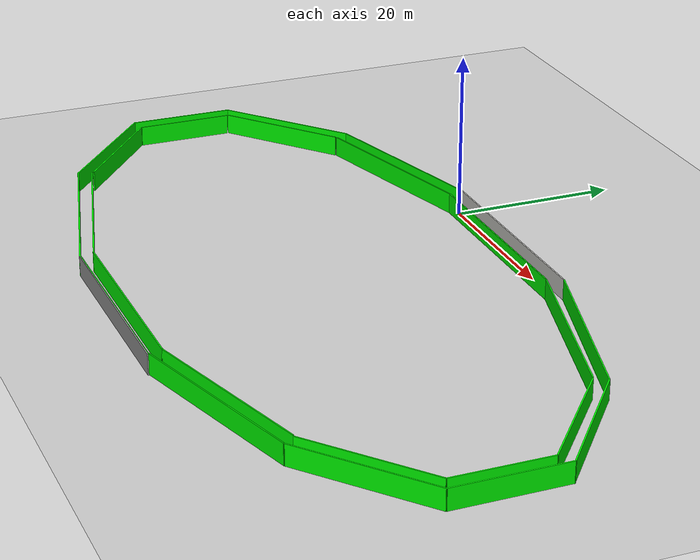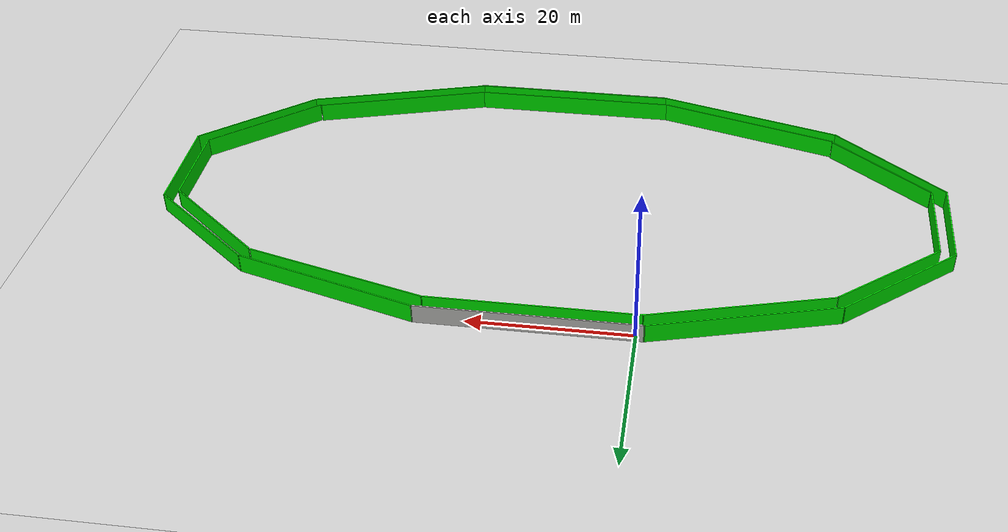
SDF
<sdf version="1.6">
 <world name="default">
  <model name="ground_plane">
   <static>1</static>
   <link name="link">
    <collision name="collision">
     <geometry><plane><normal>0 0 1</normal><size>100 100</size></plane></geometry>
     <surface><friction><ode><mu>100</mu><mu2>50</mu2></ode></friction></surface>
    </collision>
    <visual name="visual">
     <cast_shadows>0</cast_shadows>
     <geometry><plane><normal>0 0 1</normal><size>100 100</size></plane></geometry>
     <material>
      <script><uri>file://media/materials/scripts/gazebo.material</uri><name>Gazebo/Grey</name></script>
     </material>
    </visual>
   </link>
  </model>
  <light name="sun" type="directional">
   <pose>0 0 10 0 -0 0</pose>
   <diffuse>0.8 0.8 0.8 1</diffuse>
   <specular>0.2 0.2 0.2 1</specular>
   <attenuation>
    <range>1000</range>
    <constant>0.9</constant>
    <linear>0.01</linear>
    <quadratic>0.001</quadratic>
   </attenuation>
   <direction>-0.5 0.1 -0.9</direction>
  </light>
  <gravity>0 0 -9.8</gravity>
  <magnetic_field>6e-06 2.3e-05 -4.2e-05</magnetic_field>
  <atmosphere type="adiabatic"/>
  <physics name="default_physics" default="0" type="ode">
   <max_step_size>0.001</max_step_size>
   <real_time_factor>1</real_time_factor>
   <real_time_update_rate>1000</real_time_update_rate>
  </physics>
  <scene><ambient>0.4 0.4 0.4 1</ambient><background>0.7 0.7 0.7 1</background><shadows>1</shadows></scene>
  <spherical_coordinates>
   <surface_model>EARTH_WGS84</surface_model>
   <latitude_deg>0</latitude_deg>
   <longitude_deg>0</longitude_deg>
   <elevation>0</elevation>
   <heading_deg>0</heading_deg>
  </spherical_coordinates>
  <model name="racetrack">
   <pose>12.2159 -23.3351 0 0 -0 0</pose>
   <link name="Wall_26">
    <collision name="Wall_26_Collision">
     <geometry><box><size>11.75 0.15 2.5</size></box></geometry>
     <pose>0 0 1.25 0 -0 0</pose>
    </collision>
    <visual name="Wall_26_Visual">
     <pose>0 0 1.25 0 -0 0</pose>
     <geometry><box><size>11.75 0.15 2.5</size></box></geometry>
     <material>
      <script><uri>file://media/materials/scripts/gazebo.material</uri><name>Gazebo/Grey</name></script>
      <ambient>0 1 0 1</ambient>
     </material>
     <meta><layer>0</layer></meta>
    </visual>
    <pose>-47.7114 -0.020894 0 0 -0 1.5708</pose>
   </link>
   <link name="Wall_29">
    <collision name="Wall_29_Collision">
     <geometry><box><size>16.2369 0.15 2.5</size></box></geometry>
     <pose>0 0 1.25 0 -0 0</pose>
    </collision>
    <visual name="Wall_29_Visual">
     <pose>0 0 1.25 0 -0 0</pose>
     <geometry><box><size>16.2369 0.15 2.5</size></box></geometry>
     <material>
      <script><uri>file://media/materials/scripts/gazebo.material</uri><name>Gazebo/Grey</name></script>
      <ambient>0 1 0 1</ambient>
     </material>
     <meta><layer>0</layer></meta>
    </visual>
    <pose>-41.4913 11.1793 0 0 -0 0.687882</pose>
   </link>
   <link name="Wall_31">
    <collision name="Wall_31_Collision">
     <geometry><box><size>23 0.15 2.5</size></box></geometry>
     <pose>0 0 1.25 0 -0 0</pose>
    </collision>
    <visual name="Wall_31_Visual">
     <pose>0 0 1.25 0 -0 0</pose>
     <geometry><box><size>23 0.15 2.5</size></box></geometry>
     <material>
      <script><uri>file://media/materials/scripts/gazebo.material</uri><name>Gazebo/Grey</name></script>
      <ambient>0 1 0 1</ambient>
     </material>
     <meta><layer>0</layer></meta>
    </visual>
    <pose>-23.9952 19.4277 0 0 -0 0.261799</pose>
   </link>
   <link name="Wall_32">
    <collision name="Wall_32_Collision">
     <geometry><box><size>26 0.15 2.5</size></box></geometry>
     <pose>0 0 1.25 0 -0 0</pose>
    </collision>
    <visual name="Wall_32_Visual">
     <pose>0 0 1.25 0 -0 0</pose>
     <geometry><box><size>26 0.15 2.5</size></box></geometry>
     <material>
      <script><uri>file://media/materials/scripts/gazebo.material</uri><name>Gazebo/Grey</name></script>
      <ambient>0 1 0 1</ambient>
     </material>
     <meta><layer>0</layer></meta>
    </visual>
    <pose>-0.0345 22.3847 0 0 -0 0</pose>
   </link>
   <link name="Wall_33">
    <collision name="Wall_33_Collision">
     <geometry><box><size>23.25 0.15 2.5</size></box></geometry>
     <pose>0 0 1.25 0 -0 0</pose>
    </collision>
    <visual name="Wall_33_Visual">
     <pose>0 0 1.25 0 -0 0</pose>
     <geometry><box><size>23.25 0.15 2.5</size></box></geometry>
     <material>
      <script><uri>file://media/materials/scripts/gazebo.material</uri><name>Gazebo/Grey</name></script>
      <ambient>0 1 0 1</ambient>
     </material>
     <meta><layer>0</layer></meta>
    </visual>
    <pose>24.0469 19.3953 0 0 0 -0.261799</pose>
   </link>
   <link name="Wall_35">
    <collision name="Wall_35_Collision">
     <geometry><box><size>16.3153 0.15 2.5</size></box></geometry>
     <pose>0 0 1.25 0 -0 0</pose>
    </collision>
    <visual name="Wall_35_Visual">
     <pose>0 0 1.25 0 -0 0</pose>
     <geometry><box><size>16.3153 0.15 2.5</size></box></geometry>
     <material>
      <script><uri>file://media/materials/scripts/gazebo.material</uri><name>Gazebo/Grey</name></script>
      <ambient>0 1 0 1</ambient>
     </material>
     <meta><layer>0</layer></meta>
    </visual>
    <pose>41.7559 11.0562 0 0 0 -0.693764</pose>
   </link>
   <link name="Wall_36">
    <collision name="Wall_36_Collision">
     <geometry><box><size>11.75 0.15 2.5</size></box></geometry>
     <pose>0 0 1.25 0 -0 0</pose>
    </collision>
    <visual name="Wall_36_Visual">
     <pose>0 0 1.25 0 -0 0</pose>
     <geometry><box><size>11.75 0.15 2.5</size></box></geometry>
     <material>
      <script><uri>file://media/materials/scripts/gazebo.material</uri><name>Gazebo/Grey</name></script>
      <ambient>0 1 0 1</ambient>
     </material>
     <meta><layer>0</layer></meta>
    </visual>
    <pose>47.9702 0.087869 0 0 0 -1.5708</pose>
   </link>
   <link name="Wall_37">
    <collision name="Wall_37_Collision">
     <geometry><box><size>16.5151 0.15 2.5</size></box></geometry>
     <pose>0 0 1.25 0 -0 0</pose>
    </collision>
    <visual name="Wall_37_Visual">
     <pose>0 0 1.25 0 -0 0</pose>
     <geometry><box><size>16.5151 0.15 2.5</size></box></geometry>
     <material>
      <script><uri>file://media/materials/scripts/gazebo.material</uri><name>Gazebo/Grey</name></script>
      <ambient>0 1 0 1</ambient>
     </material>
     <meta><layer>0</layer></meta>
    </visual>
    <pose>41.6636 -10.9256 0 0 0 -2.4508</pose>
   </link>
   <link name="Wall_39">
    <collision name="Wall_39_Collision">
     <geometry><box><size>22.9353 0.15 2.5</size></box></geometry>
     <pose>0 0 1.25 0 -0 0</pose>
    </collision>
    <visual name="Wall_39_Visual">
     <pose>0 0 1.25 0 -0 0</pose>
     <geometry><box><size>22.9353 0.15 2.5</size></box></geometry>
     <material>
      <script><uri>file://media/materials/scripts/gazebo.material</uri><name>Gazebo/Grey</name></script>
      <ambient>0 1 0 1</ambient>
     </material>
     <meta><layer>0</layer></meta>
    </visual>
    <pose>24.0974 -19.277 0 0 0 -2.86255</pose>
   </link>
   <link name="Wall_40">
    <collision name="Wall_40_Collision">
     <geometry><box><size>26 0.15 2.5</size></box></geometry>
     <pose>0 0 1.25 0 -0 0</pose>
    </collision>
    <visual name="Wall_40_Visual">
     <pose>0 0 1.25 0 -0 0</pose>
     <geometry><box><size>26 0.15 2.5</size></box></geometry>
     <material>
      <script><uri>file://media/materials/scripts/gazebo.material</uri><name>Gazebo/Grey</name></script>
      <ambient>0 1 0 1</ambient>
     </material>
     <meta><layer>0</layer></meta>
    </visual>
    <pose>0.220422 -22.415 0 0 -0 3.14159</pose>
   </link>
   <link name="Wall_41">
    <collision name="Wall_41_Collision">
     <geometry><box><size>23.6379 0.15 2.5</size></box></geometry>
     <pose>0 0 1.25 0 -0 0</pose>
    </collision>
    <visual name="Wall_41_Visual">
     <pose>0 0 1.25 0 -0 0</pose>
     <geometry><box><size>23.6379 0.15 2.5</size></box></geometry>
     <material>
      <script><uri>file://media/materials/scripts/gazebo.material</uri><name>Gazebo/Grey</name></script>
      <ambient>0 1 0 1</ambient>
     </material>
     <meta><layer>0</layer></meta>
    </visual>
    <pose>-24.0216 -19.277 0 0 -0 2.87111</pose>
   </link>
   <link name="Wall_44">
    <collision name="Wall_44_Collision">
     <geometry><box><size>15.6786 0.15 2.5</size></box></geometry>
     <pose>0 0 1.25 0 -0 0</pose>
    </collision>
    <visual name="Wall_44_Visual">
     <pose>0 0 1.25 0 -0 0</pose>
     <geometry><box><size>15.6786 0.15 2.5</size></box></geometry>
     <material>
      <script><uri>file://media/materials/scripts/gazebo.material</uri><name>Gazebo/Grey</name></script>
      <ambient>0 1 0 1</ambient>
     </material>
     <meta><layer>0</layer></meta>
    </visual>
    <pose>-41.5529 -10.94 0 0 -0 2.46005</pose>
   </link>
   <link name="Wall_46">
    <collision name="Wall_46_Collision">
     <geometry><box><size>26 0.15 2.5</size></box></geometry>
     <pose>0 0 1.25 0 -0 0</pose>
    </collision>
    <visual name="Wall_46_Visual">
     <pose>0 0 1.25 0 -0 0</pose>
     <geometry><box><size>26 0.15 2.5</size></box></geometry>
     <material>
      <script><uri>file://media/materials/scripts/gazebo.material</uri><name>Gazebo/Grey</name></script>
      <ambient>0 1 0 1</ambient>
     </material>
     <meta><layer>0</layer></meta>
    </visual>
    <pose>0.393939 -24.086 0 0 -0 0</pose>
   </link>
   <link name="Wall_47">
    <collision name="Wall_47_Collision">
     <geometry><box><size>24.0492 0.15 2.5</size></box></geometry>
     <pose>0 0 1.25 0 -0 0</pose>
    </collision>
    <visual name="Wall_47_Visual">
     <pose>0 0 1.25 0 -0 0</pose>
     <geometry><box><size>24.0492 0.15 2.5</size></box></geometry>
     <material>
      <script><uri>file://media/materials/scripts/gazebo.material</uri><name>Gazebo/Grey</name></script>
      <ambient>0 1 0 1</ambient>
     </material>
     <meta><layer>0</layer></meta>
    </visual>
    <pose>24.8051 -20.7905 0 0 -0 0.279405</pose>
   </link>
   <link name="Wall_48">
    <collision name="Wall_48_Collision">
     <geometry><box><size>17.4863 0.15 2.5</size></box></geometry>
     <pose>0 0 1.25 0 -0 0</pose>
    </collision>
    <visual name="Wall_48_Visual">
     <pose>0 0 1.25 0 -0 0</pose>
     <geometry><box><size>17.4863 0.15 2.5</size></box></geometry>
     <material>
      <script><uri>file://media/materials/scripts/gazebo.material</uri><name>Gazebo/Grey</name></script>
      <ambient>0 1 0 1</ambient>
     </material>
     <meta><layer>0</layer></meta>
    </visual>
    <pose>42.9637 -11.9618 0 0 -0 0.692334</pose>
   </link>
   <link name="Wall_49">
    <collision name="Wall_49_Collision">
     <geometry><box><size>13.5762 0.15 2.5</size></box></geometry>
     <pose>0 0 1.25 0 -0 0</pose>
    </collision>
    <visual name="Wall_49_Visual">
     <pose>0 0 1.25 0 -0 0</pose>
     <geometry><box><size>13.5762 0.15 2.5</size></box></geometry>
     <material>
      <script><uri>file://media/materials/scripts/gazebo.material</uri><name>Gazebo/Grey</name></script>
      <ambient>0 1 0 1</ambient>
     </material>
     <meta><layer>0</layer></meta>
    </visual>
    <pose>49.5954 0.284465 0 0 -0 1.57686</pose>
   </link>
   <link name="Wall_50">
    <collision name="Wall_50_Collision">
     <geometry><box><size>17.2171 0.15 2.5</size></box></geometry>
     <pose>0 0 1.25 0 -0 0</pose>
    </collision>
    <visual name="Wall_50_Visual">
     <pose>0 0 1.25 0 -0 0</pose>
     <geometry><box><size>17.2171 0.15 2.5</size></box></geometry>
     <material>
      <script><uri>file://media/materials/scripts/gazebo.material</uri><name>Gazebo/Grey</name></script>
      <ambient>0 1 0 1</ambient>
     </material>
     <meta><layer>0</layer></meta>
    </visual>
    <pose>42.923 12.368 0 0 -0 2.46089</pose>
   </link>
   <link name="Wall_51">
    <collision name="Wall_51_Collision">
     <geometry><box><size>23.5884 0.15 2.5</size></box></geometry>
     <pose>0 0 1.25 0 -0 0</pose>
    </collision>
    <visual name="Wall_51_Visual">
     <pose>0 0 1.25 0 -0 0</pose>
     <geometry><box><size>23.5884 0.15 2.5</size></box></geometry>
     <material>
      <script><uri>file://media/materials/scripts/gazebo.material</uri><name>Gazebo/Grey</name></script>
      <ambient>0 1 0 1</ambient>
     </material>
     <meta><layer>0</layer></meta>
    </visual>
    <pose>25.0215 20.9526 0 0 -0 2.86377</pose>
   </link>
   <link name="Wall_52">
    <collision name="Wall_52_Collision">
     <geometry><box><size>27.165 0.15 2.5</size></box></geometry>
     <pose>0 0 1.25 0 -0 0</pose>
    </collision>
    <visual name="Wall_52_Visual">
     <pose>0 0 1.25 0 -0 0</pose>
     <geometry><box><size>27.165 0.15 2.5</size></box></geometry>
     <material>
      <script><uri>file://media/materials/scripts/gazebo.material</uri><name>Gazebo/CeilingTiled</name></script>
      <ambient>0 1 0 1</ambient>
     </material>
     <meta><layer>0</layer></meta>
    </visual>
    <pose>0.244126 24.1667 0 0 -0 3.14159</pose>
   </link>
   <link name="Wall_53">
    <collision name="Wall_53_Collision">
     <geometry><box><size>23.5798 0.15 2.5</size></box></geometry>
     <pose>0 0 1.25 0 -0 0</pose>
    </collision>
    <visual name="Wall_53_Visual">
     <pose>0 0 1.25 0 -0 0</pose>
     <geometry><box><size>23.5798 0.15 2.5</size></box></geometry>
     <material>
      <script><uri>file://media/materials/scripts/gazebo.material</uri><name>Gazebo/Grey</name></script>
      <ambient>0 1 0 1</ambient>
     </material>
     <meta><layer>0</layer></meta>
    </visual>
    <pose>-24.5739 21.1153 0 0 0 -2.87808</pose>
   </link>
   <link name="Wall_54">
    <collision name="Wall_54_Collision">
     <geometry><box><size>17.9969 0.15 2.5</size></box></geometry>
     <pose>0 0 1.25 0 -0 0</pose>
    </collision>
    <visual name="Wall_54_Visual">
     <pose>0 0 1.25 0 -0 0</pose>
     <geometry><box><size>17.9969 0.15 2.5</size></box></geometry>
     <material>
      <script><uri>file://media/materials/scripts/gazebo.material</uri><name>Gazebo/Grey</name></script>
      <ambient>0 1 0 1</ambient>
     </material>
     <meta><layer>0</layer></meta>
    </visual>
    <pose>-42.7196 12.3273 0 0 0 -2.44335</pose>
   </link>
   <link name="Wall_55">
    <collision name="Wall_55_Collision">
     <geometry><box><size>13.0068 0.15 2.5</size></box></geometry>
     <pose>0 0 1.25 0 -0 0</pose>
    </collision>
    <visual name="Wall_55_Visual">
     <pose>0 0 1.25 0 -0 0</pose>
     <geometry><box><size>13.0068 0.15 2.5</size></box></geometry>
     <material>
      <script><uri>file://media/materials/scripts/gazebo.material</uri><name>Gazebo/Grey</name></script>
      <ambient>0 1 0 1</ambient>
     </material>
     <meta><layer>0</layer></meta>
    </visual>
    <pose>-49.5954 0.162409 0 0 0 -1.57713</pose>
   </link>
   <link name="Wall_56">
    <collision name="Wall_56_Collision">
     <geometry><box><size>18.0593 0.15 2.5</size></box></geometry>
     <pose>0 0 1.25 0 -0 0</pose>
    </collision>
    <visual name="Wall_56_Visual">
     <pose>0 0 1.25 0 -0 0</pose>
     <geometry><box><size>18.0593 0.15 2.5</size></box></geometry>
     <material>
      <script><uri>file://media/materials/scripts/gazebo.material</uri><name>Gazebo/Grey</name></script>
      <ambient>0 1 0 1</ambient>
     </material>
     <meta><layer>0</layer></meta>
    </visual>
    <pose>-42.7602 -12.0025 0 0 0 -0.69532</pose>
   </link>
   <link name="Wall_57">
    <collision name="Wall_57_Collision">
     <geometry><box><size>24.6859 0.15 2.5</size></box></geometry>
     <pose>0 0 1.25 0 -0 0</pose>
    </collision>
    <visual name="Wall_57_Visual">
     <pose>0 0 1.25 0 -0 0</pose>
     <geometry><box><size>24.6859 0.15 2.5</size></box></geometry>
     <material>
      <script><uri>file://media/materials/scripts/gazebo.material</uri><name>Gazebo/Grey</name></script>
      <ambient>0 1 0 1</ambient>
     </material>
     <meta><layer>0</layer></meta>
    </visual>
    <pose>-24.045 -20.9533 0 0 0 -0.265089</pose>
   </link>
   <link name="Wall_58">
    <collision name="Wall_58_Collision">
     <geometry><box><size>26 0.15 2.5</size></box></geometry>
     <pose>0 0 1.25 0 -0 0</pose>
    </collision>
    <visual name="Wall_58_Visual">
     <pose>0 0 1.25 0 -0 0</pose>
     <geometry><box><size>26 0.15 2.5</size></box></geometry>
     <material>
      <script><uri>file://media/materials/scripts/gazebo.material</uri><name>Gazebo/Grey</name></script>
      <ambient>1 1 1 1</ambient>
     </material>
     <meta><layer>0</layer></meta>
    </visual>
    <pose>0.719422 -24.1674 0 0 -0 0</pose>
   </link>
   <static>1</static>
  </model>
 </world>
</sdf>
